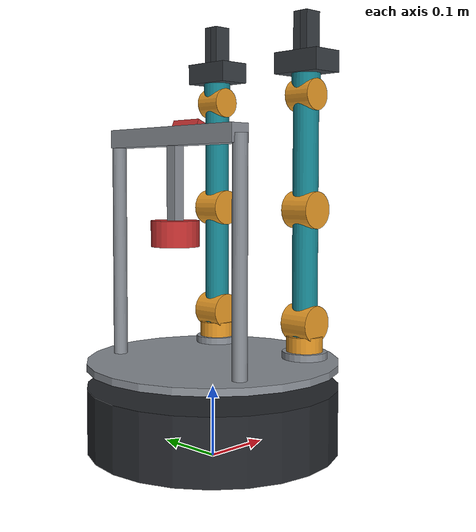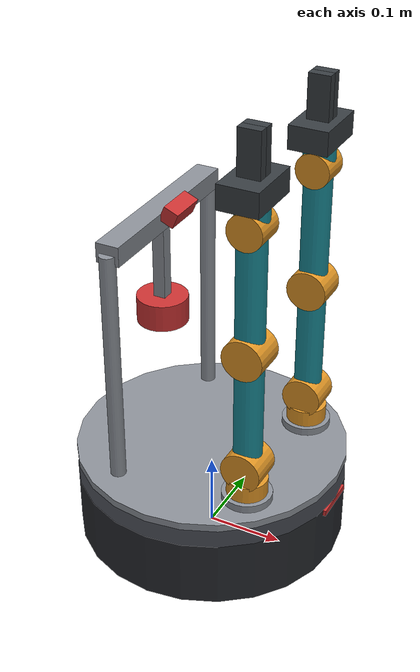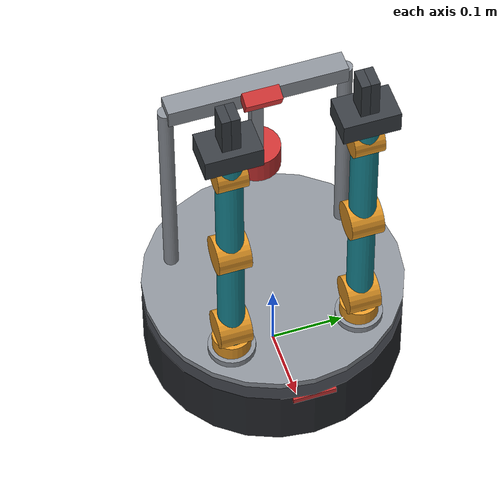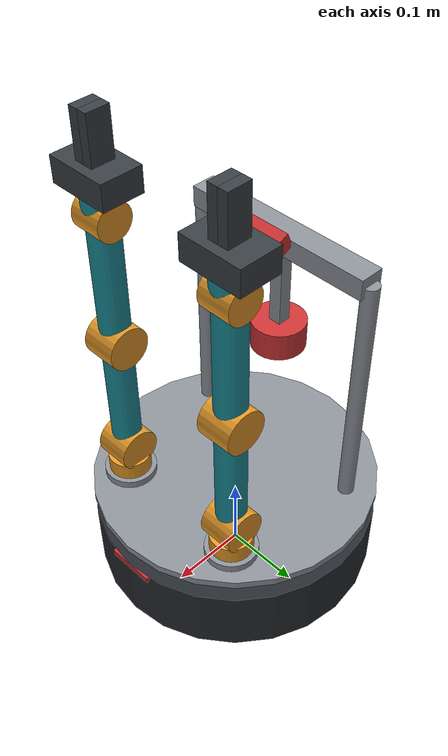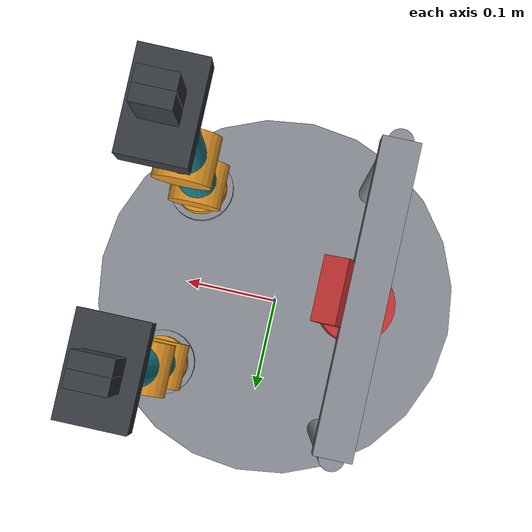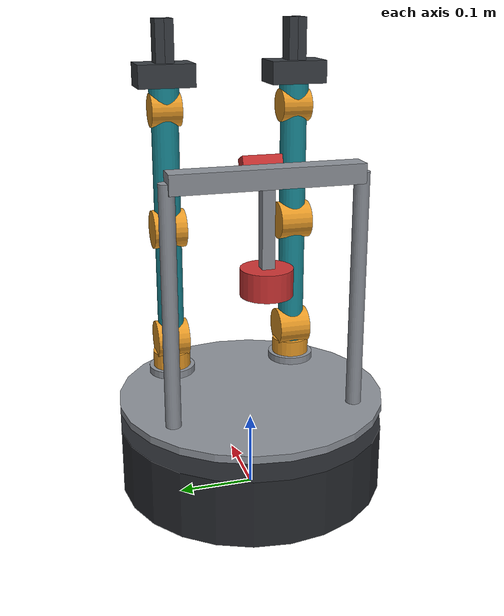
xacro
<?xml version="1.0"?>
<robot name="dual_arm_kobuki" xmlns:xacro="http://www.ros.org/wiki/xacro">

  <xacro:include filename="$(find dual_arm_kobuki)/urdf/common.xacro"/>
  <xacro:include filename="$(find dual_arm_kobuki)/urdf/base.xacro"/>
  <xacro:include filename="$(find dual_arm_kobuki)/urdf/arm.xacro"/>
  <xacro:include filename="$(find dual_arm_kobuki)/urdf/sensors.xacro"/>

  <!-- ================= ASSEMBLY ================= -->
  <xacro:kobuki_base/>
  <xacro:sensor_mast/>

  <!-- +Y is the robot's left. Separation between the two = 17.75 cm [POSTER] -->
  <xacro:four_dof_arm prefix="left"  reflect="1"/>
  <xacro:four_dof_arm prefix="right" reflect="-1"/>

  <!-- ================= GAZEBO SYSTEM PLUGINS ================= -->

  <gazebo>
    <plugin filename="gz-sim-joint-state-publisher-system"
            name="gz::sim::systems::JointStatePublisher">
      <topic>joint_states</topic>
    </plugin>
  </gazebo>

  <!-- Position controllers. Every arm and finger joint gets one, so the
       model holds pose under gravity and every DOF is drivable from a ROS
       topic without ros2_control. -->
  <xacro:macro name="gz_position_controller" params="joint p i d imax cmax">
    <gazebo>
      <plugin filename="gz-sim-joint-position-controller-system"
              name="gz::sim::systems::JointPositionController">
        <joint_name>${joint}</joint_name>
        <topic>/arm/${joint}/cmd_pos</topic>
        <p_gain>${p}</p_gain>
        <i_gain>${i}</i_gain>
        <d_gain>${d}</d_gain>
        <i_max>${imax}</i_max>
        <i_min>${-imax}</i_min>
        <cmd_max>${cmax}</cmd_max>
        <cmd_min>${-cmax}</cmd_min>
      </plugin>
    </gazebo>
  </xacro:macro>

  <!-- Arm joints (4 DOF each) -->
  <xacro:gz_position_controller joint="left_j1"  p="6.0" i="0.05" d="0.6" imax="1.0" cmax="${joint_effort}"/>
  <xacro:gz_position_controller joint="left_j2"  p="9.0" i="0.10" d="0.9" imax="1.0" cmax="${joint_effort}"/>
  <xacro:gz_position_controller joint="left_j3"  p="7.0" i="0.08" d="0.7" imax="1.0" cmax="${joint_effort}"/>
  <xacro:gz_position_controller joint="left_j4"  p="4.0" i="0.05" d="0.4" imax="1.0" cmax="${joint_effort}"/>
  <xacro:gz_position_controller joint="right_j1" p="6.0" i="0.05" d="0.6" imax="1.0" cmax="${joint_effort}"/>
  <xacro:gz_position_controller joint="right_j2" p="9.0" i="0.10" d="0.9" imax="1.0" cmax="${joint_effort}"/>
  <xacro:gz_position_controller joint="right_j3" p="7.0" i="0.08" d="0.7" imax="1.0" cmax="${joint_effort}"/>
  <xacro:gz_position_controller joint="right_j4" p="4.0" i="0.05" d="0.4" imax="1.0" cmax="${joint_effort}"/>

  <!-- Finger joints (prismatic, stiff: they must hold a grasp) -->
  <xacro:gz_position_controller joint="left_finger_a"  p="600.0" i="8.0" d="20.0" imax="12.0" cmax="${finger_effort}"/>
  <xacro:gz_position_controller joint="left_finger_b"  p="600.0" i="8.0" d="20.0" imax="12.0" cmax="${finger_effort}"/>
  <xacro:gz_position_controller joint="right_finger_a" p="600.0" i="8.0" d="20.0" imax="12.0" cmax="${finger_effort}"/>
  <xacro:gz_position_controller joint="right_finger_b" p="600.0" i="8.0" d="20.0" imax="12.0" cmax="${finger_effort}"/>

  <gazebo>
    <plugin filename="gz-sim-detachable-joint-system"
            name="gz::sim::systems::DetachableJoint">
      <parent_link>left_palm</parent_link>
      <child_model>object_bimanual</child_model>
      <child_link>link</child_link>
      <attach_topic>/grasp/left/attach</attach_topic>
      <detach_topic>/grasp/left/detach</detach_topic>
    </plugin>
  </gazebo>

</robot>

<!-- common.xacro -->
<robot xmlns:xacro="http://www.ros.org/wiki/xacro">

  <!-- ========== Base ========== -->
  <xacro:property name="base_radius"        value="0.1775"/>   <!-- [POSTER] 17.75 cm -->
  <xacro:property name="base_height"        value="0.09"/>     <!-- [PLACEHOLDER] -->
  <xacro:property name="ground_clearance"   value="0.015"/>    <!-- [PLACEHOLDER] -->
  <xacro:property name="base_mass"          value="2.5"/>      <!-- [PLACEHOLDER] Kobuki ~2.35 kg dry -->

  <!-- ========== Top deck ========== -->
  <xacro:property name="deck_radius"        value="0.1775"/>   <!-- [POSTER] hex edge = R = circumradius -->
  <xacro:property name="deck_thickness"     value="0.010"/>    <!-- [PLACEHOLDER] -->
  <xacro:property name="deck_top_z"         value="0.14"/>     <!-- [POSTER] arm mounting height 14 cm -->
  <xacro:property name="deck_mass"          value="0.30"/>     <!-- [PLACEHOLDER] -->

  <!-- ========== Arm mount geometry ========== -->
  <xacro:property name="arm_offset_fwd"     value="0.095"/>    <!-- [POSTER] 9.5 cm -->
  <xacro:property name="arm_offset_lat"     value="0.08875"/>  <!-- [POSTER] +/- 8.875 cm, S = 17.75 cm -->
  <!-- derived r = sqrt(0.095^2 + 0.08875^2) = 0.1300 m  [POSTER: 13 cm] -->

  <!-- ========== Arm link lengths ========== -->
  <xacro:property name="riser_h0"           value="0.04"/>     <!-- [POSTER] h0 = 4 cm   (J1 to J2) -->
  <xacro:property name="upper_arm_L1"       value="0.16"/>     <!-- [POSTER] L1 = 16 cm  (J2 to J3) -->
  <xacro:property name="forearm_L2"         value="0.16"/>     <!-- [POSTER] L2 = 16 cm  (J3 to J4) -->

  <xacro:property name="link_radius"        value="0.018"/>
  <xacro:property name="housing_radius"     value="0.026"/>    <!-- joint housings, so articulation is visible -->
  <xacro:property name="housing_length"     value="0.044"/>

  <xacro:property name="riser_mass"         value="0.15"/>     <!-- [PLACEHOLDER] -->
  <xacro:property name="upper_arm_mass"     value="0.20"/>     <!-- [PLACEHOLDER] -->
  <xacro:property name="forearm_mass"       value="0.18"/>     <!-- [PLACEHOLDER] -->

  <xacro:property name="wrist_len"          value="0.030"/>
  <xacro:property name="wrist_radius"       value="0.020"/>
  <xacro:property name="wrist_mass"         value="0.06"/>

  <xacro:property name="palm_len"           value="0.030"/>
  <xacro:property name="palm_x"             value="0.050"/>
  <xacro:property name="palm_y"             value="0.075"/>
  <xacro:property name="palm_mass"          value="0.08"/>

  <xacro:property name="finger_len"         value="0.055"/>
  <xacro:property name="finger_thk"         value="0.012"/>    <!-- along the closing axis (Y) -->
  <xacro:property name="finger_wid"         value="0.028"/>    <!-- across (X) -->
  <xacro:property name="finger_mass"        value="0.025"/>
  <xacro:property name="finger_stroke"      value="0.035"/>    <!-- per finger, so 7.0 cm max opening -->

  <!-- Grasp point sits between the finger pads, 60% down their length -->
  <xacro:property name="grasp_offset"       value="${palm_len + 0.6*finger_len}"/>

  <!-- ========== Joint limits ========== -->
  <!-- [PLACEHOLDER] Section 2B leaves per-axis limits open. -->
  <xacro:property name="j1_lower"  value="-1.5708"/>
  <xacro:property name="j1_upper"  value="1.5708"/>
  <xacro:property name="j2_lower"  value="-1.5708"/>
  <xacro:property name="j2_upper"  value="1.5708"/>
  <xacro:property name="j3_lower"  value="-2.3562"/>
  <xacro:property name="j3_upper"  value="2.3562"/>
  <xacro:property name="j4_lower"  value="-2.0000"/>
  <xacro:property name="j4_upper"  value="2.0000"/>
  <xacro:property name="joint_effort"    value="5.0"/>
  <xacro:property name="joint_velocity"  value="2.0"/>
  <xacro:property name="joint_damping"   value="0.15"/>
  <xacro:property name="joint_friction"  value="0.05"/>
  <xacro:property name="finger_effort"   value="25.0"/>   <!-- N, prismatic -->
  <xacro:property name="finger_velocity" value="0.10"/>

  <!-- ========== HOME POSE ==========
       Arms parked folded back and up: clear of the table, clear of each
       other, and visibly articulated so the 4 DOF read at a glance. -->
  <xacro:property name="home_j1" value="0.0"/>
  <xacro:property name="home_j2" value="-0.55"/>
  <xacro:property name="home_j3" value="1.35"/>
  <xacro:property name="home_j4" value="0.50"/>

  <!-- ========== Sensor mast ==========
       Heights are specified ABOVE GROUND LEVEL and the mounting offsets are
       derived from them, so changing a target height here is all you need. -->
  <xacro:property name="mast_offset_r"      value="0.14"/>     <!-- [POSTER] 14 cm from O -->
  <xacro:property name="mast_offset_x"      value="-0.07"/>
  <xacro:property name="mast_offset_y"      value="0.1212"/>   <!-- sqrt(0.14^2 - 0.07^2), so r = 14 cm exactly -->
  <xacro:property name="mast_height"        value="0.31"/>     <!-- post length above the deck -->
  <xacro:property name="mast_radius"        value="0.010"/>
  <xacro:property name="mast_mass"          value="0.10"/>

  <xacro:property name="camera_height_agl"  value="0.46"/>     <!-- [SPEC] camera 46 cm above ground -->
  <xacro:property name="lidar_height_agl"   value="0.32"/>     <!-- [SPEC] LiDAR 30-35 cm above ground -->

  <!-- mast_head centre sits at deck_top_z + mast_height above ground -->
  <xacro:property name="mast_head_agl"      value="${deck_top_z + mast_height}"/>
  <xacro:property name="camera_z_off"       value="${camera_height_agl - mast_head_agl}"/>
  <xacro:property name="lidar_z_off"        value="${lidar_height_agl - mast_head_agl}"/>

  <!-- ========== INERTIA MACROS ========== -->

  <xacro:macro name="cylinder_inertial" params="mass radius length *origin">
    <inertial>
      <xacro:insert_block name="origin"/>
      <mass value="${mass}"/>
      <inertia
        ixx="${mass*(3.0*radius*radius + length*length)/12.0}" ixy="0.0" ixz="0.0"
        iyy="${mass*(3.0*radius*radius + length*length)/12.0}" iyz="0.0"
        izz="${mass*radius*radius/2.0}"/>
    </inertial>
  </xacro:macro>

  <xacro:macro name="box_inertial" params="mass x y z *origin">
    <inertial>
      <xacro:insert_block name="origin"/>
      <mass value="${mass}"/>
      <inertia
        ixx="${mass*(y*y + z*z)/12.0}" ixy="0.0" ixz="0.0"
        iyy="${mass*(x*x + z*z)/12.0}" iyz="0.0"
        izz="${mass*(x*x + y*y)/12.0}"/>
    </inertial>
  </xacro:macro>

  <!-- ========== MATERIALS ========== -->
  <material name="kobuki_dark"><color rgba="0.15 0.16 0.18 1.0"/></material>
  <material name="deck_grey">  <color rgba="0.55 0.57 0.60 1.0"/></material>
  <material name="arm_teal">   <color rgba="0.10 0.55 0.60 1.0"/></material>
  <material name="joint_amber"><color rgba="0.90 0.60 0.15 1.0"/></material>
  <material name="finger_dark"><color rgba="0.22 0.24 0.26 1.0"/></material>
  <material name="pad_green">  <color rgba="0.20 0.65 0.35 1.0"/></material>
  <material name="sensor_red"> <color rgba="0.80 0.20 0.20 1.0"/></material>

</robot>

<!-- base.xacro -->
<robot xmlns:xacro="http://www.ros.org/wiki/xacro">

  <xacro:macro name="kobuki_base">

    <!-- base_footprint sits on the ground; base_link is the body centre -->
    <link name="base_footprint"/>

    <joint name="base_footprint_to_base_link" type="fixed">
      <parent link="base_footprint"/>
      <child  link="base_link"/>
      <origin xyz="0 0 ${ground_clearance + base_height/2.0}" rpy="0 0 0"/>
    </joint>

    <link name="base_link">
      <visual>
        <origin xyz="0 0 0" rpy="0 0 0"/>
        <geometry><cylinder radius="${base_radius}" length="${base_height}"/></geometry>
        <material name="kobuki_dark"/>
      </visual>
      <collision>
        <origin xyz="0 0 0" rpy="0 0 0"/>
        <geometry><cylinder radius="${base_radius}" length="${base_height}"/></geometry>
      </collision>
      <xacro:cylinder_inertial mass="${base_mass}" radius="${base_radius}" length="${base_height}">
        <origin xyz="0 0 0" rpy="0 0 0"/>
      </xacro:cylinder_inertial>
    </link>

    <!-- Front marker so orientation is obvious in the GUI -->
    <joint name="base_to_front_marker" type="fixed">
      <parent link="base_link"/>
      <child  link="front_marker"/>
      <origin xyz="${base_radius - 0.01} 0 ${base_height/2.0 - 0.005}" rpy="0 0 0"/>
    </joint>
    <link name="front_marker">
      <visual>
        <geometry><box size="0.02 0.06 0.008"/></geometry>
        <material name="sensor_red"/>
      </visual>
      <xacro:box_inertial mass="0.01" x="0.02" y="0.06" z="0.008">
        <origin xyz="0 0 0"/>
      </xacro:box_inertial>
    </link>

    <!-- ========== Top deck ========== -->
    <joint name="base_to_deck" type="fixed">
      <parent link="base_link"/>
      <child  link="top_deck"/>
      <!-- deck top surface lands exactly at deck_top_z above the ground -->
      <origin xyz="0 0 ${deck_top_z - deck_thickness/2.0 - (ground_clearance + base_height/2.0)}" rpy="0 0 0"/>
    </joint>

    <link name="top_deck">
      <visual>
        <origin xyz="0 0 0" rpy="0 0 0"/>
        <geometry><cylinder radius="${deck_radius}" length="${deck_thickness}"/></geometry>
        <material name="deck_grey"/>
      </visual>
      <collision>
        <origin xyz="0 0 0" rpy="0 0 0"/>
        <geometry><cylinder radius="${deck_radius}" length="${deck_thickness}"/></geometry>
      </collision>
      <xacro:cylinder_inertial mass="${deck_mass}" radius="${deck_radius}" length="${deck_thickness}">
        <origin xyz="0 0 0" rpy="0 0 0"/>
      </xacro:cylinder_inertial>
    </link>

  </xacro:macro>

</robot>

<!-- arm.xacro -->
<robot xmlns:xacro="http://www.ros.org/wiki/xacro">

  <xacro:macro name="four_dof_arm" params="prefix reflect">

    <!-- ========== Mount pad on the deck ========== -->
    <joint name="${prefix}_mount_fixed" type="fixed">
      <parent link="top_deck"/>
      <child  link="${prefix}_mount"/>
      <origin xyz="${arm_offset_fwd} ${reflect * arm_offset_lat} ${deck_thickness/2.0}" rpy="0 0 0"/>
    </joint>

    <link name="${prefix}_mount">
      <visual>
        <origin xyz="0 0 0.005"/>
        <geometry><cylinder radius="0.032" length="0.010"/></geometry>
        <material name="deck_grey"/>
      </visual>
      <collision>
        <origin xyz="0 0 0.005"/>
        <geometry><cylinder radius="0.032" length="0.010"/></geometry>
      </collision>
      <xacro:cylinder_inertial mass="0.05" radius="0.032" length="0.010">
        <origin xyz="0 0 0.005"/>
      </xacro:cylinder_inertial>
    </link>

    <!-- ========== J1: base yaw (about Z) ========== -->
    <joint name="${prefix}_j1" type="revolute">
      <parent link="${prefix}_mount"/>
      <child  link="${prefix}_riser"/>
      <origin xyz="0 0 0.010" rpy="0 0 0"/>
      <axis xyz="0 0 1"/>
      <limit lower="${j1_lower}" upper="${j1_upper}"
             effort="${joint_effort}" velocity="${joint_velocity}"/>
      <dynamics damping="${joint_damping}" friction="${joint_friction}"/>
    </joint>

    <link name="${prefix}_riser">
      <!-- yaw housing: cylinder along Z, matching J1's axis -->
      <visual>
        <origin xyz="0 0 0.011"/>
        <geometry><cylinder radius="${housing_radius}" length="0.022"/></geometry>
        <material name="joint_amber"/>
      </visual>
      <visual>
        <origin xyz="0 0 ${riser_h0/2.0}"/>
        <geometry><cylinder radius="0.020" length="${riser_h0}"/></geometry>
        <material name="arm_teal"/>
      </visual>
      <collision>
        <origin xyz="0 0 ${riser_h0/2.0}"/>
        <geometry><cylinder radius="${housing_radius}" length="${riser_h0}"/></geometry>
      </collision>
      <xacro:cylinder_inertial mass="${riser_mass}" radius="0.022" length="${riser_h0}">
        <origin xyz="0 0 ${riser_h0/2.0}"/>
      </xacro:cylinder_inertial>
    </link>

    <!-- ========== J2: shoulder pitch (about Y) ========== -->
    <joint name="${prefix}_j2" type="revolute">
      <parent link="${prefix}_riser"/>
      <child  link="${prefix}_upper_arm"/>
      <origin xyz="0 0 ${riser_h0}" rpy="0 0 0"/>
      <axis xyz="0 1 0"/>
      <limit lower="${j2_lower}" upper="${j2_upper}"
             effort="${joint_effort}" velocity="${joint_velocity}"/>
      <dynamics damping="${joint_damping}" friction="${joint_friction}"/>
    </joint>

    <link name="${prefix}_upper_arm">
      <!-- shoulder housing lies ALONG Y, i.e. along its own rotation axis -->
      <visual>
        <origin xyz="0 0 0" rpy="1.5708 0 0"/>
        <geometry><cylinder radius="${housing_radius}" length="${housing_length}"/></geometry>
        <material name="joint_amber"/>
      </visual>
      <visual>
        <origin xyz="0 0 ${upper_arm_L1/2.0}"/>
        <geometry><cylinder radius="${link_radius}" length="${upper_arm_L1}"/></geometry>
        <material name="arm_teal"/>
      </visual>
      <collision>
        <origin xyz="0 0 ${upper_arm_L1/2.0}"/>
        <geometry><cylinder radius="${link_radius}" length="${upper_arm_L1}"/></geometry>
      </collision>
      <xacro:cylinder_inertial mass="${upper_arm_mass}" radius="${link_radius}" length="${upper_arm_L1}">
        <origin xyz="0 0 ${upper_arm_L1/2.0}"/>
      </xacro:cylinder_inertial>
    </link>

    <!-- ========== J3: elbow pitch (about Y) ========== -->
    <joint name="${prefix}_j3" type="revolute">
      <parent link="${prefix}_upper_arm"/>
      <child  link="${prefix}_forearm"/>
      <origin xyz="0 0 ${upper_arm_L1}" rpy="0 0 0"/>
      <axis xyz="0 1 0"/>
      <limit lower="${j3_lower}" upper="${j3_upper}"
             effort="${joint_effort}" velocity="${joint_velocity}"/>
      <dynamics damping="${joint_damping}" friction="${joint_friction}"/>
    </joint>

    <link name="${prefix}_forearm">
      <visual>
        <origin xyz="0 0 0" rpy="1.5708 0 0"/>
        <geometry><cylinder radius="${housing_radius}" length="${housing_length}"/></geometry>
        <material name="joint_amber"/>
      </visual>
      <visual>
        <origin xyz="0 0 ${forearm_L2/2.0}"/>
        <geometry><cylinder radius="${link_radius}" length="${forearm_L2}"/></geometry>
        <material name="arm_teal"/>
      </visual>
      <collision>
        <origin xyz="0 0 ${forearm_L2/2.0}"/>
        <geometry><cylinder radius="${link_radius}" length="${forearm_L2}"/></geometry>
      </collision>
      <xacro:cylinder_inertial mass="${forearm_mass}" radius="${link_radius}" length="${forearm_L2}">
        <origin xyz="0 0 ${forearm_L2/2.0}"/>
      </xacro:cylinder_inertial>
    </link>

    <!-- ========== J4: WRIST pitch (about Y) ========== -->
    <joint name="${prefix}_j4" type="revolute">
      <parent link="${prefix}_forearm"/>
      <child  link="${prefix}_wrist"/>
      <origin xyz="0 0 ${forearm_L2}" rpy="0 0 0"/>
      <axis xyz="0 1 0"/>
      <limit lower="${j4_lower}" upper="${j4_upper}"
             effort="${joint_effort}" velocity="${joint_velocity}"/>
      <dynamics damping="${joint_damping}" friction="${joint_friction}"/>
    </joint>

    <link name="${prefix}_wrist">
      <visual>
        <origin xyz="0 0 0" rpy="1.5708 0 0"/>
        <geometry><cylinder radius="0.022" length="0.040"/></geometry>
        <material name="joint_amber"/>
      </visual>
      <visual>
        <origin xyz="0 0 ${wrist_len/2.0}"/>
        <geometry><cylinder radius="${wrist_radius}" length="${wrist_len}"/></geometry>
        <material name="arm_teal"/>
      </visual>
      <collision>
        <origin xyz="0 0 ${wrist_len/2.0}"/>
        <geometry><cylinder radius="${wrist_radius}" length="${wrist_len}"/></geometry>
      </collision>
      <xacro:cylinder_inertial mass="${wrist_mass}" radius="${wrist_radius}" length="${wrist_len}">
        <origin xyz="0 0 ${wrist_len/2.0}"/>
      </xacro:cylinder_inertial>
    </link>

    <!-- ========== Palm ========== -->
    <joint name="${prefix}_palm_fixed" type="fixed">
      <parent link="${prefix}_wrist"/>
      <child  link="${prefix}_palm"/>
      <origin xyz="0 0 ${wrist_len}" rpy="0 0 0"/>
    </joint>

    <link name="${prefix}_palm">
      <visual>
        <origin xyz="0 0 ${palm_len/2.0}"/>
        <geometry><box size="${palm_x} ${palm_y} ${palm_len}"/></geometry>
        <material name="finger_dark"/>
      </visual>
      <collision>
        <origin xyz="0 0 ${palm_len/2.0}"/>
        <geometry><box size="${palm_x} ${palm_y} ${palm_len}"/></geometry>
      </collision>
      <xacro:box_inertial mass="${palm_mass}" x="${palm_x}" y="${palm_y}" z="${palm_len}">
        <origin xyz="0 0 ${palm_len/2.0}"/>
      </xacro:box_inertial>
    </link>

    <xacro:finger prefix="${prefix}" side="a" dir="1"/>
    <xacro:finger prefix="${prefix}" side="b" dir="-1"/>

    <!-- Grasp frame: the point IK should solve for, between the pads -->
    <joint name="${prefix}_grasp_fixed" type="fixed">
      <parent link="${prefix}_palm"/>
      <child  link="${prefix}_grasp_frame"/>
      <origin xyz="0 0 ${grasp_offset}" rpy="0 0 0"/>
    </joint>
    <link name="${prefix}_grasp_frame"/>

  </xacro:macro>

  <!-- ================= FINGER MACRO ================= -->
  <xacro:macro name="finger" params="prefix side dir">

    <joint name="${prefix}_finger_${side}" type="prismatic">
      <parent link="${prefix}_palm"/>
      <child  link="${prefix}_finger_${side}_link"/>
      <origin xyz="0 ${dir * finger_thk/2.0} ${palm_len}" rpy="0 0 0"/>
      <axis xyz="0 ${dir} 0"/>
      <limit lower="0.0" upper="${finger_stroke}"
             effort="${finger_effort}" velocity="${finger_velocity}"/>
      <dynamics damping="2.0" friction="0.5"/>
    </joint>

    <link name="${prefix}_finger_${side}_link">
      <visual>
        <origin xyz="0 0 ${finger_len/2.0}"/>
        <geometry><box size="${finger_wid} ${finger_thk} ${finger_len}"/></geometry>
        <material name="finger_dark"/>
      </visual>
      <!-- contact pad on the inward face -->
      <visual>
        <origin xyz="0 ${-dir * (finger_thk/2.0 + 0.0015)} ${finger_len*0.6}"/>
        <geometry><box size="${finger_wid*0.85} 0.003 ${finger_len*0.55}"/></geometry>
        <material name="pad_green"/>
      </visual>
      <collision>
        <origin xyz="0 0 ${finger_len/2.0}"/>
        <geometry><box size="${finger_wid} ${finger_thk} ${finger_len}"/></geometry>
      </collision>
      <xacro:box_inertial mass="${finger_mass}" x="${finger_wid}" y="${finger_thk}" z="${finger_len}">
        <origin xyz="0 0 ${finger_len/2.0}"/>
      </xacro:box_inertial>
    </link>

    <!-- Grippy pads. Without this the object squirts out under contact. -->
    <gazebo reference="${prefix}_finger_${side}_link">
      <mu1>1.6</mu1>
      <mu2>1.6</mu2>
      <kp>1000000.0</kp>
      <kd>100.0</kd>
    </gazebo>

  </xacro:macro>

</robot>

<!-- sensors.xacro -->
<robot xmlns:xacro="http://www.ros.org/wiki/xacro">

  <xacro:macro name="mast_post" params="name y">
    <joint name="${name}_fixed" type="fixed">
      <parent link="top_deck"/>
      <child  link="${name}"/>
      <origin xyz="${mast_offset_x} ${y} ${deck_thickness/2.0}" rpy="0 0 0"/>
    </joint>
    <link name="${name}">
      <visual>
        <origin xyz="0 0 ${mast_height/2.0}"/>
        <geometry><cylinder radius="${mast_radius}" length="${mast_height}"/></geometry>
        <material name="deck_grey"/>
      </visual>
      <collision>
        <origin xyz="0 0 ${mast_height/2.0}"/>
        <geometry><cylinder radius="${mast_radius}" length="${mast_height}"/></geometry>
      </collision>
      <xacro:cylinder_inertial mass="${mast_mass}" radius="${mast_radius}" length="${mast_height}">
        <origin xyz="0 0 ${mast_height/2.0}"/>
      </xacro:cylinder_inertial>
    </link>
  </xacro:macro>

  <xacro:macro name="sensor_mast">

    <xacro:mast_post name="mast_left"  y="${mast_offset_y}"/>
    <xacro:mast_post name="mast_right" y="${-mast_offset_y}"/>

    <!-- Crossbar joining the posts. Its centre sits at mast_head_agl. -->
    <joint name="mast_head_fixed" type="fixed">
      <parent link="mast_left"/>
      <child  link="mast_head"/>
      <origin xyz="0 ${-mast_offset_y} ${mast_height}" rpy="0 0 0"/>
    </joint>
    <link name="mast_head">
      <visual>
        <geometry><box size="0.03 ${2*mast_offset_y} 0.025"/></geometry>
        <material name="deck_grey"/>
      </visual>
      <collision>
        <geometry><box size="0.03 ${2*mast_offset_y} 0.025"/></geometry>
      </collision>
      <xacro:box_inertial mass="0.10" x="0.03" y="${2*mast_offset_y}" z="0.025">
        <origin xyz="0 0 0"/>
      </xacro:box_inertial>
    </link>

    <!-- ========== RGB camera: 46 cm AGL, pitched 23 deg down ========== -->
    <joint name="camera_fixed" type="fixed">
      <parent link="mast_head"/>
      <child  link="camera_link"/>
      <origin xyz="0.025 0 ${camera_z_off}" rpy="0 0.40 0"/>
    </joint>
    <link name="camera_link">
      <visual>
        <geometry><box size="0.02 0.05 0.02"/></geometry>
        <material name="sensor_red"/>
      </visual>
      <xacro:box_inertial mass="0.03" x="0.02" y="0.05" z="0.02">
        <origin xyz="0 0 0"/>
      </xacro:box_inertial>
    </link>

    <!-- ========== 2D LiDAR: 32 cm AGL, level ==========
         Mounted on a short drop bracket from the crossbar. -->
    <joint name="lidar_bracket_fixed" type="fixed">
      <parent link="mast_head"/>
      <child  link="lidar_bracket"/>
      <origin xyz="0 0 ${lidar_z_off/2.0}" rpy="0 0 0"/>
    </joint>
    <link name="lidar_bracket">
      <visual>
        <geometry><box size="0.016 0.016 ${-lidar_z_off}"/></geometry>
        <material name="deck_grey"/>
      </visual>
      <xacro:box_inertial mass="0.02" x="0.016" y="0.016" z="${-lidar_z_off}">
        <origin xyz="0 0 0"/>
      </xacro:box_inertial>
    </link>

    <joint name="lidar_fixed" type="fixed">
      <parent link="mast_head"/>
      <child  link="lidar_link"/>
      <origin xyz="0 0 ${lidar_z_off}" rpy="0 0 0"/>
    </joint>
    <link name="lidar_link">
      <visual>
        <geometry><cylinder radius="0.033" length="0.035"/></geometry>
        <material name="sensor_red"/>
      </visual>
      <xacro:cylinder_inertial mass="0.12" radius="0.033" length="0.035">
        <origin xyz="0 0 0"/>
      </xacro:cylinder_inertial>
    </link>

    <!-- ================= GAZEBO HARMONIC SENSOR DEFINITIONS ================= -->

    <gazebo reference="camera_link">
      <sensor name="rgb_camera" type="camera">
        <topic>camera/image_raw</topic>
        <gz_frame_id>camera_link</gz_frame_id>
        <update_rate>15</update_rate>
        <always_on>true</always_on>
        <visualize>false</visualize>
        <camera>
          <horizontal_fov>1.204</horizontal_fov>
          <image>
            <width>640</width>
            <height>480</height>
            <format>R8G8B8</format>
          </image>
          <clip>
            <near>0.05</near>
            <far>12.0</far>
          </clip>
        </camera>
      </sensor>
    </gazebo>

    <gazebo reference="lidar_link">
      <sensor name="lidar_2d" type="gpu_lidar">
        <topic>scan</topic>
        <gz_frame_id>lidar_link</gz_frame_id>
        <update_rate>10</update_rate>
        <always_on>true</always_on>
        <visualize>true</visualize>
        <lidar>
          <scan>
            <horizontal>
              <samples>360</samples>
              <resolution>1</resolution>
              <min_angle>-3.14159</min_angle>
              <max_angle>3.14159</max_angle>
            </horizontal>
          </scan>
          <range>
            <min>0.12</min>
            <max>8.0</max>
            <resolution>0.01</resolution>
          </range>
        </lidar>
      </sensor>
    </gazebo>

  </xacro:macro>

</robot>
